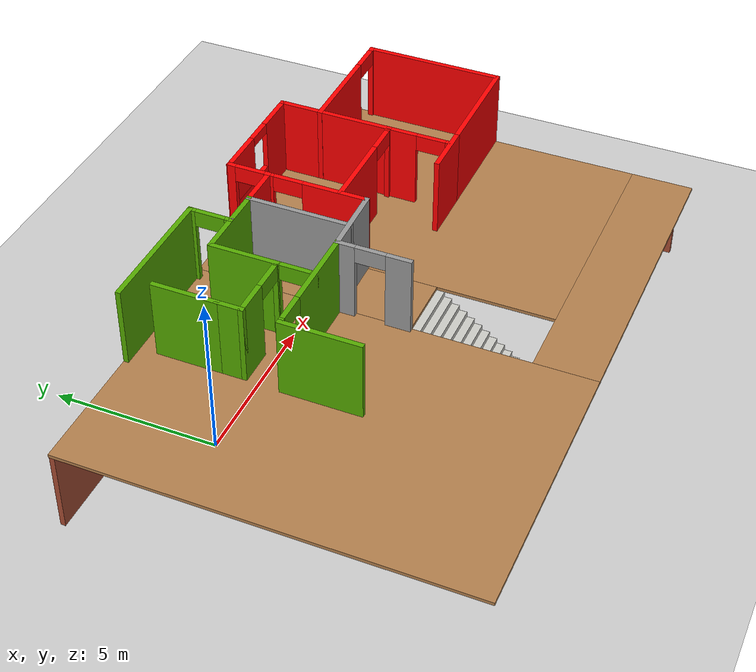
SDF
<sdf version="1.6">
 <world name="default">
  <model name="ground_plane">
   <static>1</static>
   <link name="link">
    <collision name="collision">
     <geometry><plane><normal>0 0 1</normal><size>100 100</size></plane></geometry>
     <surface><friction><ode><mu>100</mu><mu2>50</mu2></ode></friction></surface>
    </collision>
    <visual name="visual">
     <cast_shadows>0</cast_shadows>
     <geometry><plane><normal>0 0 1</normal><size>100 100</size></plane></geometry>
     <material>
      <script><uri>file://media/materials/scripts/gazebo.material</uri><name>Gazebo/Grey</name></script>
     </material>
    </visual>
   </link>
  </model>
  <model name="2floorHouse">
   <pose>4.58828 -3.57771 0 0 -0 0</pose>
   <link name="Floor_7">
    <pose>-0.064 0 2.5 0 -0 0</pose>
    <visual name="Floor_7_Visual_0">
     <pose>-4.67984 0 0.05 0 -0 0</pose>
     <geometry><box><size>8.04273 11.89 0.1</size></box></geometry>
     <material>
      <script><uri>file://media/materials/scripts/gazebo.material</uri><name>Gazebo/Wood</name></script>
      <ambient>0 0 1 1</ambient>
     </material>
    </visual>
    <collision name="Floor_7_Collision_0">
     <geometry><box><size>8.04273 11.89 0.1</size></box></geometry>
     <pose>-4.67984 0 0.05 0 -0 0</pose>
    </collision>
    <visual name="Floor_7_Visual_1">
     <pose>4.02136 -5.01144 0.05 0 -0 0</pose>
     <geometry><box><size>9.35968 1.86713 0.1</size></box></geometry>
     <material>
      <script><uri>file://media/materials/scripts/gazebo.material</uri><name>Gazebo/Wood</name></script>
      <ambient>0 0 1 1</ambient>
     </material>
    </visual>
    <collision name="Floor_7_Collision_1">
     <geometry><box><size>9.35968 1.86713 0.1</size></box></geometry>
     <pose>4.02136 -5.01144 0.05 0 -0 0</pose>
    </collision>
    <visual name="Floor_7_Visual_2">
     <pose>4.98424 0.933567 0.05 0 -0 0</pose>
     <geometry><box><size>7.43393 10.0229 0.1</size></box></geometry>
     <material>
      <script><uri>file://media/materials/scripts/gazebo.material</uri><name>Gazebo/Wood</name></script>
      <ambient>0 0 1 1</ambient>
     </material>
    </visual>
    <collision name="Floor_7_Collision_2">
     <geometry><box><size>7.43393 10.0229 0.1</size></box></geometry>
     <pose>4.98424 0.933567 0.05 0 -0 0</pose>
    </collision>
    <visual name="Floor_7_Visual_3">
     <pose>0.304399 2.68357 0.05 0 -0 0</pose>
     <geometry><box><size>1.92575 6.52287 0.1</size></box></geometry>
     <material>
      <script><uri>file://media/materials/scripts/gazebo.material</uri><name>Gazebo/Wood</name></script>
      <ambient>0 0 1 1</ambient>
     </material>
    </visual>
    <collision name="Floor_7_Collision_3">
     <geometry><box><size>1.92575 6.52287 0.1</size></box></geometry>
     <pose>0.304399 2.68357 0.05 0 -0 0</pose>
    </collision>
   </link>
   <link name="Stairs_0">
    <visual name="Stairs_0_Visual_0">
     <pose>0.240398 -3.9612 0.083333 0 -0 -3.14159</pose>
     <geometry><box><size>1.92575 0.233333 0.166667</size></box></geometry>
     <material>
      <script><uri>file://media/materials/scripts/gazebo.material</uri><name>Gazebo/CeilingTiled</name></script>
      <ambient>0 0 0 1</ambient>
     </material>
    </visual>
    <collision name="Stairs_0_Collision_0">
     <geometry><box><size>1.92575 0.233333 0.166667</size></box></geometry>
     <pose>0.240398 -3.9612 0.083333 0 -0 -3.14159</pose>
    </collision>
    <visual name="Stairs_0_Visual_1">
     <pose>0.240398 -3.72787 0.25 0 -0 -3.14159</pose>
     <geometry><box><size>1.92575 0.233333 0.166667</size></box></geometry>
     <material>
      <script><uri>file://media/materials/scripts/gazebo.material</uri><name>Gazebo/CeilingTiled</name></script>
      <ambient>0 0 0 1</ambient>
     </material>
    </visual>
    <collision name="Stairs_0_Collision_1">
     <geometry><box><size>1.92575 0.233333 0.166667</size></box></geometry>
     <pose>0.240398 -3.72787 0.25 0 -0 -3.14159</pose>
    </collision>
    <visual name="Stairs_0_Visual_2">
     <pose>0.240398 -3.49454 0.416667 0 -0 -3.14159</pose>
     <geometry><box><size>1.92575 0.233333 0.166667</size></box></geometry>
     <material>
      <script><uri>file://media/materials/scripts/gazebo.material</uri><name>Gazebo/CeilingTiled</name></script>
      <ambient>0 0 0 1</ambient>
     </material>
    </visual>
    <collision name="Stairs_0_Collision_2">
     <geometry><box><size>1.92575 0.233333 0.166667</size></box></geometry>
     <pose>0.240398 -3.49454 0.416667 0 -0 -3.14159</pose>
    </collision>
    <visual name="Stairs_0_Visual_3">
     <pose>0.240398 -3.2612 0.583333 0 -0 -3.14159</pose>
     <geometry><box><size>1.92575 0.233333 0.166667</size></box></geometry>
     <material>
      <script><uri>file://media/materials/scripts/gazebo.material</uri><name>Gazebo/CeilingTiled</name></script>
      <ambient>0 0 0 1</ambient>
     </material>
    </visual>
    <collision name="Stairs_0_Collision_3">
     <geometry><box><size>1.92575 0.233333 0.166667</size></box></geometry>
     <pose>0.240398 -3.2612 0.583333 0 -0 -3.14159</pose>
    </collision>
    <visual name="Stairs_0_Visual_4">
     <pose>0.240398 -3.02787 0.75 0 -0 -3.14159</pose>
     <geometry><box><size>1.92575 0.233333 0.166667</size></box></geometry>
     <material>
      <script><uri>file://media/materials/scripts/gazebo.material</uri><name>Gazebo/CeilingTiled</name></script>
      <ambient>0 0 0 1</ambient>
     </material>
    </visual>
    <collision name="Stairs_0_Collision_4">
     <geometry><box><size>1.92575 0.233333 0.166667</size></box></geometry>
     <pose>0.240398 -3.02787 0.75 0 -0 -3.14159</pose>
    </collision>
    <visual name="Stairs_0_Visual_5">
     <pose>0.240398 -2.79454 0.916667 0 -0 -3.14159</pose>
     <geometry><box><size>1.92575 0.233333 0.166667</size></box></geometry>
     <material>
      <script><uri>file://media/materials/scripts/gazebo.material</uri><name>Gazebo/CeilingTiled</name></script>
      <ambient>0 0 0 1</ambient>
     </material>
    </visual>
    <collision name="Stairs_0_Collision_5">
     <geometry><box><size>1.92575 0.233333 0.166667</size></box></geometry>
     <pose>0.240398 -2.79454 0.916667 0 -0 -3.14159</pose>
    </collision>
    <visual name="Stairs_0_Visual_6">
     <pose>0.240398 -2.5612 1.08333 0 -0 -3.14159</pose>
     <geometry><box><size>1.92575 0.233333 0.166667</size></box></geometry>
     <material>
      <script><uri>file://media/materials/scripts/gazebo.material</uri><name>Gazebo/CeilingTiled</name></script>
      <ambient>0 0 0 1</ambient>
     </material>
    </visual>
    <collision name="Stairs_0_Collision_6">
     <geometry><box><size>1.92575 0.233333 0.166667</size></box></geometry>
     <pose>0.240398 -2.5612 1.08333 0 -0 -3.14159</pose>
    </collision>
    <visual name="Stairs_0_Visual_7">
     <pose>0.240398 -2.32787 1.25 0 -0 -3.14159</pose>
     <geometry><box><size>1.92575 0.233333 0.166667</size></box></geometry>
     <material>
      <script><uri>file://media/materials/scripts/gazebo.material</uri><name>Gazebo/CeilingTiled</name></script>
      <ambient>0 0 0 1</ambient>
     </material>
    </visual>
    <collision name="Stairs_0_Collision_7">
     <geometry><box><size>1.92575 0.233333 0.166667</size></box></geometry>
     <pose>0.240398 -2.32787 1.25 0 -0 -3.14159</pose>
    </collision>
    <visual name="Stairs_0_Visual_8">
     <pose>0.240398 -2.09454 1.41667 0 -0 -3.14159</pose>
     <geometry><box><size>1.92575 0.233333 0.166667</size></box></geometry>
     <material>
      <script><uri>file://media/materials/scripts/gazebo.material</uri><name>Gazebo/CeilingTiled</name></script>
      <ambient>0 0 0 1</ambient>
     </material>
    </visual>
    <collision name="Stairs_0_Collision_8">
     <geometry><box><size>1.92575 0.233333 0.166667</size></box></geometry>
     <pose>0.240398 -2.09454 1.41667 0 -0 -3.14159</pose>
    </collision>
    <visual name="Stairs_0_Visual_9">
     <pose>0.240398 -1.8612 1.58333 0 -0 -3.14159</pose>
     <geometry><box><size>1.92575 0.233333 0.166667</size></box></geometry>
     <material>
      <script><uri>file://media/materials/scripts/gazebo.material</uri><name>Gazebo/CeilingTiled</name></script>
      <ambient>0 0 0 1</ambient>
     </material>
    </visual>
    <collision name="Stairs_0_Collision_9">
     <geometry><box><size>1.92575 0.233333 0.166667</size></box></geometry>
     <pose>0.240398 -1.8612 1.58333 0 -0 -3.14159</pose>
    </collision>
    <visual name="Stairs_0_Visual_10">
     <pose>0.240398 -1.62787 1.75 0 -0 -3.14159</pose>
     <geometry><box><size>1.92575 0.233333 0.166667</size></box></geometry>
     <material>
      <script><uri>file://media/materials/scripts/gazebo.material</uri><name>Gazebo/CeilingTiled</name></script>
      <ambient>0 0 0 1</ambient>
     </material>
    </visual>
    <collision name="Stairs_0_Collision_10">
     <geometry><box><size>1.92575 0.233333 0.166667</size></box></geometry>
     <pose>0.240398 -1.62787 1.75 0 -0 -3.14159</pose>
    </collision>
    <visual name="Stairs_0_Visual_11">
     <pose>0.240398 -1.39454 1.91667 0 -0 -3.14159</pose>
     <geometry><box><size>1.92575 0.233333 0.166667</size></box></geometry>
     <material>
      <script><uri>file://media/materials/scripts/gazebo.material</uri><name>Gazebo/CeilingTiled</name></script>
      <ambient>0 0 0 1</ambient>
     </material>
    </visual>
    <collision name="Stairs_0_Collision_11">
     <geometry><box><size>1.92575 0.233333 0.166667</size></box></geometry>
     <pose>0.240398 -1.39454 1.91667 0 -0 -3.14159</pose>
    </collision>
    <visual name="Stairs_0_Visual_12">
     <pose>0.240398 -1.1612 2.08333 0 -0 -3.14159</pose>
     <geometry><box><size>1.92575 0.233333 0.166667</size></box></geometry>
     <material>
      <script><uri>file://media/materials/scripts/gazebo.material</uri><name>Gazebo/CeilingTiled</name></script>
      <ambient>0 0 0 1</ambient>
     </material>
    </visual>
    <collision name="Stairs_0_Collision_12">
     <geometry><box><size>1.92575 0.233333 0.166667</size></box></geometry>
     <pose>0.240398 -1.1612 2.08333 0 -0 -3.14159</pose>
    </collision>
    <visual name="Stairs_0_Visual_13">
     <pose>0.240398 -0.92787 2.25 0 -0 -3.14159</pose>
     <geometry><box><size>1.92575 0.233333 0.166667</size></box></geometry>
     <material>
      <script><uri>file://media/materials/scripts/gazebo.material</uri><name>Gazebo/CeilingTiled</name></script>
      <ambient>0 0 0 1</ambient>
     </material>
    </visual>
    <collision name="Stairs_0_Collision_13">
     <geometry><box><size>1.92575 0.233333 0.166667</size></box></geometry>
     <pose>0.240398 -0.92787 2.25 0 -0 -3.14159</pose>
    </collision>
    <visual name="Stairs_0_Visual_14">
     <pose>0.240398 -0.694536 2.41667 0 -0 -3.14159</pose>
     <geometry><box><size>1.92575 0.233333 0.166667</size></box></geometry>
     <material>
      <script><uri>file://media/materials/scripts/gazebo.material</uri><name>Gazebo/CeilingTiled</name></script>
      <ambient>0 0 0 1</ambient>
     </material>
    </visual>
    <collision name="Stairs_0_Collision_14">
     <geometry><box><size>1.92575 0.233333 0.166667</size></box></geometry>
     <pose>0.240398 -0.694536 2.41667 0 -0 -3.14159</pose>
    </collision>
   </link>
   <link name="Wall_100">
    <collision name="Wall_100_Collision">
     <geometry><box><size>1.38678 0.15 2.5</size></box></geometry>
     <pose>0 0 1.25 0 -0 0</pose>
    </collision>
    <visual name="Wall_100_Visual">
     <pose>0 0 1.25 0 -0 0</pose>
     <geometry><box><size>1.38678 0.15 2.5</size></box></geometry>
     <material>
      <script><uri>file://media/materials/scripts/gazebo.material</uri><name>Gazebo/Grey</name></script>
      <ambient>1 1 1 1</ambient>
     </material>
    </visual>
    <pose>0.641704 4.61 0 0 -0 3.14159</pose>
   </link>
   <link name="Wall_106">
    <collision name="Wall_106_Collision">
     <geometry><box><size>2.4 0.15 2.5</size></box></geometry>
     <pose>0 0 1.25 0 -0 0</pose>
    </collision>
    <visual name="Wall_106_Visual">
     <pose>0 0 1.25 0 -0 0</pose>
     <geometry><box><size>2.4 0.15 2.5</size></box></geometry>
     <material>
      <script><uri>file://media/materials/scripts/gazebo.material</uri><name>Gazebo/Grey</name></script>
      <ambient>1 1 1 1</ambient>
     </material>
    </visual>
    <pose>-1.1018 4.61 0 0 -0 3.14159</pose>
   </link>
   <link name="Wall_108">
    <collision name="Wall_108_Collision">
     <geometry><box><size>2.1 0.15 2.5</size></box></geometry>
     <pose>0 0 1.25 0 -0 0</pose>
    </collision>
    <visual name="Wall_108_Visual">
     <pose>0 0 1.25 0 -0 0</pose>
     <geometry><box><size>2.1 0.15 2.5</size></box></geometry>
     <material>
      <script><uri>file://media/materials/scripts/gazebo.material</uri><name>Gazebo/Grey</name></script>
      <ambient>1 1 1 1</ambient>
     </material>
    </visual>
    <pose>-2.23979 3.635 0 0 -0 1.5708</pose>
   </link>
   <link name="Wall_112">
    <collision name="Wall_112_Collision">
     <geometry><box><size>4 0.15 2.5</size></box></geometry>
     <pose>0 0 1.25 0 -0 0</pose>
    </collision>
    <visual name="Wall_112_Visual">
     <pose>0 0 1.25 0 -0 0</pose>
     <geometry><box><size>4 0.15 2.5</size></box></geometry>
     <material>
      <script><uri>file://media/materials/scripts/gazebo.material</uri><name>Gazebo/Grey</name></script>
      <ambient>1 1 1 1</ambient>
     </material>
    </visual>
    <pose>-2.98475 5.8698 0 0 0 -3.14149</pose>
   </link>
   <link name="Wall_115">
    <collision name="Wall_115_Collision">
     <geometry><box><size>1.4 0.15 2.5</size></box></geometry>
     <pose>0 0 1.25 0 -0 0</pose>
    </collision>
    <visual name="Wall_115_Visual">
     <pose>0 0 1.25 0 -0 0</pose>
     <geometry><box><size>1.4 0.15 2.5</size></box></geometry>
     <material>
      <script><uri>file://media/materials/scripts/gazebo.material</uri><name>Gazebo/Grey</name></script>
      <ambient>1 1 1 1</ambient>
     </material>
    </visual>
    <pose>-1.0598 5.245 0 0 0 -1.5708</pose>
   </link>
   <link name="Wall_116">
    <collision name="Wall_116_Collision">
     <geometry><box><size>0.15 0.15 2.5</size></box></geometry>
     <pose>0 0 1.25 0 -0 0</pose>
    </collision>
    <visual name="Wall_116_Visual">
     <pose>0 0 1.25 0 -0 0</pose>
     <geometry><box><size>0.15 0.15 2.5</size></box></geometry>
     <material>
      <script><uri>file://media/materials/scripts/gazebo.material</uri><name>Gazebo/Grey</name></script>
      <ambient>1 1 1 1</ambient>
     </material>
    </visual>
    <pose>-1.0598 4.62 0 0 -0 0</pose>
   </link>
   <link name="Wall_130">
    <collision name="Wall_130_Collision">
     <geometry><box><size>3.6 0.15 2.5</size></box></geometry>
     <pose>0 0 1.25 0 -0 0</pose>
    </collision>
    <visual name="Wall_130_Visual">
     <pose>0 0 1.25 0 -0 0</pose>
     <geometry><box><size>3.6 0.15 2.5</size></box></geometry>
     <material>
      <script><uri>file://media/materials/scripts/gazebo.material</uri><name>Gazebo/Grey</name></script>
      <ambient>1 1 1 1</ambient>
     </material>
    </visual>
    <pose>2.9912 5.838 0 0 -0 3.14159</pose>
   </link>
   <link name="Wall_133">
    <collision name="Wall_133_Collision">
     <geometry><box><size>1.35 0.15 2.5</size></box></geometry>
     <pose>0 0 1.25 0 -0 0</pose>
    </collision>
    <visual name="Wall_133_Visual">
     <pose>0 0 1.25 0 -0 0</pose>
     <geometry><box><size>1.35 0.15 2.5</size></box></geometry>
     <material>
      <script><uri>file://media/materials/scripts/gazebo.material</uri><name>Gazebo/Grey</name></script>
      <ambient>1 1 1 1</ambient>
     </material>
    </visual>
    <pose>1.26021 5.21 0 0 -0 1.5708</pose>
   </link>
   <link name="Wall_297">
    <collision name="Wall_297_Collision">
     <geometry><box><size>2.4 0.15 2.5</size></box></geometry>
     <pose>0 0 1.25 0 -0 0</pose>
    </collision>
    <visual name="Wall_297_Visual">
     <pose>0 0 1.25 0 -0 0</pose>
     <geometry><box><size>2.4 0.15 2.5</size></box></geometry>
     <material>
      <script><uri>file://media/materials/scripts/gazebo.material</uri><name>Gazebo/Grey</name></script>
      <ambient>0.333333 0.666667 0 1</ambient>
     </material>
    </visual>
    <pose>-4.34021 0.434996 2.5 0 0 -1.5708</pose>
   </link>
   <link name="Wall_299">
    <pose>-2.565 1.56 2.5 0 -0 0</pose>
    <visual name="Wall_299_Visual_0">
     <pose>-1.73627 0 1.25 0 -0 0</pose>
     <geometry><box><size>0.227865 0.15 2.5</size></box></geometry>
     <material>
      <script><uri>file://media/materials/scripts/gazebo.material</uri><name>Gazebo/Grey</name></script>
      <ambient>0.333333 0.666667 0 1</ambient>
     </material>
    </visual>
    <collision name="Wall_299_Collision_0">
     <geometry><box><size>0.227865 0.15 2.5</size></box></geometry>
     <pose>-1.73627 0 1.25 0 -0 0</pose>
    </collision>
    <visual name="Wall_299_Visual_1">
     <pose>0.563933 0 1.25 0 -0 0</pose>
     <geometry><box><size>2.57254 0.15 2.5</size></box></geometry>
     <material>
      <script><uri>file://media/materials/scripts/gazebo.material</uri><name>Gazebo/Grey</name></script>
      <ambient>0.333333 0.666667 0 1</ambient>
     </material>
    </visual>
    <collision name="Wall_299_Collision_1">
     <geometry><box><size>2.57254 0.15 2.5</size></box></geometry>
     <pose>0.563933 0 1.25 0 -0 0</pose>
    </collision>
    <visual name="Wall_299_Visual_2">
     <pose>-1.17234 0 2.25 0 -0 0</pose>
     <geometry><box><size>0.9 0.15 0.5</size></box></geometry>
     <material>
      <script><uri>file://media/materials/scripts/gazebo.material</uri><name>Gazebo/Grey</name></script>
      <ambient>0.333333 0.666667 0 1</ambient>
     </material>
    </visual>
    <collision name="Wall_299_Collision_2">
     <geometry><box><size>0.9 0.15 0.5</size></box></geometry>
     <pose>-1.17234 0 2.25 0 -0 0</pose>
    </collision>
   </link>
   <link name="Wall_300">
    <pose>-0.789795 0.509996 2.5 0 0 -1.5708</pose>
    <visual name="Wall_300_Visual_0">
     <pose>-0.8265 0 1.25 0 -0 0</pose>
     <geometry><box><size>0.597 0.15 2.5</size></box></geometry>
     <material>
      <script><uri>file://media/materials/scripts/gazebo.material</uri><name>Gazebo/Grey</name></script>
      <ambient>1 1 1 1</ambient>
     </material>
    </visual>
    <collision name="Wall_300_Collision_0">
     <geometry><box><size>0.597 0.15 2.5</size></box></geometry>
     <pose>-0.8265 0 1.25 0 -0 0</pose>
    </collision>
    <visual name="Wall_300_Visual_1">
     <pose>0.7485 0 1.25 0 -0 0</pose>
     <geometry><box><size>0.753 0.15 2.5</size></box></geometry>
     <material>
      <script><uri>file://media/materials/scripts/gazebo.material</uri><name>Gazebo/Grey</name></script>
      <ambient>1 1 1 1</ambient>
     </material>
    </visual>
    <collision name="Wall_300_Collision_1">
     <geometry><box><size>0.753 0.15 2.5</size></box></geometry>
     <pose>0.7485 0 1.25 0 -0 0</pose>
    </collision>
    <visual name="Wall_300_Visual_2">
     <pose>-0.078 0 2.25 0 -0 0</pose>
     <geometry><box><size>0.9 0.15 0.5</size></box></geometry>
     <material>
      <script><uri>file://media/materials/scripts/gazebo.material</uri><name>Gazebo/Grey</name></script>
      <ambient>1 1 1 1</ambient>
     </material>
    </visual>
    <collision name="Wall_300_Collision_2">
     <geometry><box><size>0.9 0.15 0.5</size></box></geometry>
     <pose>-0.078 0 2.25 0 -0 0</pose>
    </collision>
   </link>
   <link name="Wall_307">
    <collision name="Wall_307_Collision">
     <geometry><box><size>2 0.15 2.5</size></box></geometry>
     <pose>0 0 1.25 0 -0 0</pose>
    </collision>
    <visual name="Wall_307_Visual">
     <pose>0 0 1.25 0 -0 0</pose>
     <geometry><box><size>2 0.15 2.5</size></box></geometry>
     <material>
      <script><uri>file://media/materials/scripts/gazebo.material</uri><name>Gazebo/Grey</name></script>
      <ambient>0.333333 0.666667 0 1</ambient>
     </material>
    </visual>
    <pose>-4.29 4.285 2.5 0 0 -1.57058</pose>
   </link>
   <link name="Wall_309">
    <collision name="Wall_309_Collision">
     <geometry><box><size>0.85 0.15 2.5</size></box></geometry>
     <pose>0 0 1.25 0 -0 0</pose>
    </collision>
    <visual name="Wall_309_Visual">
     <pose>0 0 1.25 0 -0 0</pose>
     <geometry><box><size>0.85 0.15 2.5</size></box></geometry>
     <material>
      <script><uri>file://media/materials/scripts/gazebo.material</uri><name>Gazebo/Grey</name></script>
      <ambient>0.333333 0.666667 0 1</ambient>
     </material>
    </visual>
    <pose>-4.28979 3.01 2.5 0 0 -1.5708</pose>
   </link>
   <link name="Wall_310">
    <pose>-3.2648 2.66 2.5 0 -0 0</pose>
    <visual name="Wall_310_Visual_0">
     <pose>-0.547035 0 1.25 0 -0 0</pose>
     <geometry><box><size>1.10593 0.15 2.5</size></box></geometry>
     <material>
      <script><uri>file://media/materials/scripts/gazebo.material</uri><name>Gazebo/Grey</name></script>
      <ambient>0.333333 0.666667 0 1</ambient>
     </material>
    </visual>
    <collision name="Wall_310_Collision_0">
     <geometry><box><size>1.10593 0.15 2.5</size></box></geometry>
     <pose>-0.547035 0 1.25 0 -0 0</pose>
    </collision>
    <visual name="Wall_310_Visual_1">
     <pose>1.00297 0 1.25 0 -0 0</pose>
     <geometry><box><size>0.194069 0.15 2.5</size></box></geometry>
     <material>
      <script><uri>file://media/materials/scripts/gazebo.material</uri><name>Gazebo/Grey</name></script>
      <ambient>0.333333 0.666667 0 1</ambient>
     </material>
    </visual>
    <collision name="Wall_310_Collision_1">
     <geometry><box><size>0.194069 0.15 2.5</size></box></geometry>
     <pose>1.00297 0 1.25 0 -0 0</pose>
    </collision>
    <visual name="Wall_310_Visual_2">
     <pose>0.455931 0 2.25 0 -0 0</pose>
     <geometry><box><size>0.9 0.15 0.5</size></box></geometry>
     <material>
      <script><uri>file://media/materials/scripts/gazebo.material</uri><name>Gazebo/Grey</name></script>
      <ambient>0.333333 0.666667 0 1</ambient>
     </material>
    </visual>
    <collision name="Wall_310_Collision_2">
     <geometry><box><size>0.9 0.15 0.5</size></box></geometry>
     <pose>0.455931 0 2.25 0 -0 0</pose>
    </collision>
   </link>
   <link name="Wall_311">
    <pose>-2.23979 2.11 2.5 0 0 -1.5708</pose>
    <visual name="Wall_311_Visual_0">
     <pose>-0.539157 0 1.25 0 -0 0</pose>
     <geometry><box><size>0.171686 0.15 2.5</size></box></geometry>
     <material>
      <script><uri>file://media/materials/scripts/gazebo.material</uri><name>Gazebo/Grey</name></script>
      <ambient>0.333333 0.666667 0 1</ambient>
     </material>
    </visual>
    <collision name="Wall_311_Collision_0">
     <geometry><box><size>0.171686 0.15 2.5</size></box></geometry>
     <pose>-0.539157 0 1.25 0 -0 0</pose>
    </collision>
    <visual name="Wall_311_Visual_1">
     <pose>0.535843 0 1.25 0 -0 0</pose>
     <geometry><box><size>0.178314 0.15 2.5</size></box></geometry>
     <material>
      <script><uri>file://media/materials/scripts/gazebo.material</uri><name>Gazebo/Grey</name></script>
      <ambient>0.333333 0.666667 0 1</ambient>
     </material>
    </visual>
    <collision name="Wall_311_Collision_1">
     <geometry><box><size>0.178314 0.15 2.5</size></box></geometry>
     <pose>0.535843 0 1.25 0 -0 0</pose>
    </collision>
    <visual name="Wall_311_Visual_2">
     <pose>-0.003314 0 2.25 0 -0 0</pose>
     <geometry><box><size>0.9 0.15 0.5</size></box></geometry>
     <material>
      <script><uri>file://media/materials/scripts/gazebo.material</uri><name>Gazebo/Grey</name></script>
      <ambient>0.333333 0.666667 0 1</ambient>
     </material>
    </visual>
    <collision name="Wall_311_Collision_2">
     <geometry><box><size>0.9 0.15 0.5</size></box></geometry>
     <pose>-0.003314 0 2.25 0 -0 0</pose>
    </collision>
   </link>
   <link name="Wall_312">
    <collision name="Wall_312_Collision">
     <geometry><box><size>2.20039 0.15 2.5</size></box></geometry>
     <pose>0 0 1.25 0 -0 0</pose>
    </collision>
    <visual name="Wall_312_Visual">
     <pose>0 0 1.25 0 -0 0</pose>
     <geometry><box><size>2.20039 0.15 2.5</size></box></geometry>
     <material>
      <script><uri>file://media/materials/scripts/gazebo.material</uri><name>Gazebo/Grey</name></script>
      <ambient>1 1 1 1</ambient>
     </material>
    </visual>
    <pose>0.235204 1.58011 2.5 0 -0 0.01962</pose>
   </link>
   <link name="Wall_313">
    <pose>1.26021 3.10511 2.5 0 -0 1.5708</pose>
    <visual name="Wall_313_Visual_0">
     <pose>-0.572109 0 1.25 0 -0 0</pose>
     <geometry><box><size>2.01555 0.15 2.5</size></box></geometry>
     <material>
      <script><uri>file://media/materials/scripts/gazebo.material</uri><name>Gazebo/Grey</name></script>
      <ambient>1 0 0 1</ambient>
     </material>
    </visual>
    <collision name="Wall_313_Collision_0">
     <geometry><box><size>2.01555 0.15 2.5</size></box></geometry>
     <pose>-0.572109 0 1.25 0 -0 0</pose>
    </collision>
    <visual name="Wall_313_Visual_1">
     <pose>1.45778 0 1.25 0 -0 0</pose>
     <geometry><box><size>0.244218 0.15 2.5</size></box></geometry>
     <material>
      <script><uri>file://media/materials/scripts/gazebo.material</uri><name>Gazebo/Grey</name></script>
      <ambient>1 0 0 1</ambient>
     </material>
    </visual>
    <collision name="Wall_313_Collision_1">
     <geometry><box><size>0.244218 0.15 2.5</size></box></geometry>
     <pose>1.45778 0 1.25 0 -0 0</pose>
    </collision>
    <visual name="Wall_313_Visual_2">
     <pose>0.885669 0 2.25 0 -0 0</pose>
     <geometry><box><size>0.9 0.15 0.5</size></box></geometry>
     <material>
      <script><uri>file://media/materials/scripts/gazebo.material</uri><name>Gazebo/Grey</name></script>
      <ambient>1 0 0 1</ambient>
     </material>
    </visual>
    <collision name="Wall_313_Collision_2">
     <geometry><box><size>0.9 0.15 0.5</size></box></geometry>
     <pose>0.885669 0 2.25 0 -0 0</pose>
    </collision>
   </link>
   <link name="Wall_314">
    <collision name="Wall_314_Collision">
     <geometry><box><size>1.387 0.15 2.5</size></box></geometry>
     <pose>0 0 1.25 0 -0 0</pose>
    </collision>
    <visual name="Wall_314_Visual">
     <pose>0 0 1.25 0 -0 0</pose>
     <geometry><box><size>1.387 0.15 2.5</size></box></geometry>
     <material>
      <script><uri>file://media/materials/scripts/gazebo.material</uri><name>Gazebo/Grey</name></script>
      <ambient>1 0 0 1</ambient>
     </material>
    </visual>
    <pose>0.641704 4.61 2.5 0 -0 3.14159</pose>
   </link>
   <link name="Wall_315">
    <collision name="Wall_315_Collision">
     <geometry><box><size>3.2 0.15 2.5</size></box></geometry>
     <pose>0 0 1.25 0 -0 0</pose>
    </collision>
    <visual name="Wall_315_Visual">
     <pose>0 0 1.25 0 -0 0</pose>
     <geometry><box><size>3.2 0.15 2.5</size></box></geometry>
     <material>
      <script><uri>file://media/materials/scripts/gazebo.material</uri><name>Gazebo/Grey</name></script>
      <ambient>1 1 1 1</ambient>
     </material>
    </visual>
    <pose>0.023205 3.085 2.5 0 0 -1.5708</pose>
   </link>
   <link name="Wall_316">
    <collision name="Wall_316_Collision">
     <geometry><box><size>2.4 0.15 2.5</size></box></geometry>
     <pose>0 0 1.25 0 -0 0</pose>
    </collision>
    <visual name="Wall_316_Visual">
     <pose>0 0 1.25 0 -0 0</pose>
     <geometry><box><size>2.4 0.15 2.5</size></box></geometry>
     <material>
      <script><uri>file://media/materials/scripts/gazebo.material</uri><name>Gazebo/Grey</name></script>
      <ambient>0.333333 0.666667 0 1</ambient>
     </material>
    </visual>
    <pose>-1.1018 4.61 2.5 0 -0 3.14159</pose>
   </link>
   <link name="Wall_317">
    <collision name="Wall_317_Collision">
     <geometry><box><size>2.1 0.15 2.5</size></box></geometry>
     <pose>0 0 1.25 0 -0 0</pose>
    </collision>
    <visual name="Wall_317_Visual">
     <pose>0 0 1.25 0 -0 0</pose>
     <geometry><box><size>2.1 0.15 2.5</size></box></geometry>
     <material>
      <script><uri>file://media/materials/scripts/gazebo.material</uri><name>Gazebo/Grey</name></script>
      <ambient>0.333333 0.666667 0 1</ambient>
     </material>
    </visual>
    <pose>-2.23979 3.635 2.5 0 -0 1.5708</pose>
   </link>
   <link name="Wall_318">
    <collision name="Wall_318_Collision">
     <geometry><box><size>3.99991 0.15 2.5</size></box></geometry>
     <pose>0 0 1.25 0 -0 0</pose>
    </collision>
    <visual name="Wall_318_Visual">
     <pose>0 0 1.25 0 -0 0</pose>
     <geometry><box><size>3.99991 0.15 2.5</size></box></geometry>
     <material>
      <script><uri>file://media/materials/scripts/gazebo.material</uri><name>Gazebo/Grey</name></script>
      <ambient>0.333333 0.666667 0 1</ambient>
     </material>
    </visual>
    <pose>-2.98475 5.8698 2.5 0 0 -3.14149</pose>
   </link>
   <link name="Wall_320">
    <pose>-1.0598 5.245 2.5 0 0 -1.5708</pose>
    <visual name="Wall_320_Visual_0">
     <pose>-0.572184 0 1.25 0 -0 0</pose>
     <geometry><box><size>0.255633 0.15 2.5</size></box></geometry>
     <material>
      <script><uri>file://media/materials/scripts/gazebo.material</uri><name>Gazebo/Grey</name></script>
      <ambient>0.333333 0.666667 0 1</ambient>
     </material>
    </visual>
    <collision name="Wall_320_Collision_0">
     <geometry><box><size>0.255633 0.15 2.5</size></box></geometry>
     <pose>-0.572184 0 1.25 0 -0 0</pose>
    </collision>
    <visual name="Wall_320_Visual_1">
     <pose>0.577816 0 1.25 0 -0 0</pose>
     <geometry><box><size>0.244367 0.15 2.5</size></box></geometry>
     <material>
      <script><uri>file://media/materials/scripts/gazebo.material</uri><name>Gazebo/Grey</name></script>
      <ambient>0.333333 0.666667 0 1</ambient>
     </material>
    </visual>
    <collision name="Wall_320_Collision_1">
     <geometry><box><size>0.244367 0.15 2.5</size></box></geometry>
     <pose>0.577816 0 1.25 0 -0 0</pose>
    </collision>
    <visual name="Wall_320_Visual_2">
     <pose>0.005633 0 2.25 0 -0 0</pose>
     <geometry><box><size>0.9 0.15 0.5</size></box></geometry>
     <material>
      <script><uri>file://media/materials/scripts/gazebo.material</uri><name>Gazebo/Grey</name></script>
      <ambient>0.333333 0.666667 0 1</ambient>
     </material>
    </visual>
    <collision name="Wall_320_Collision_2">
     <geometry><box><size>0.9 0.15 0.5</size></box></geometry>
     <pose>0.005633 0 2.25 0 -0 0</pose>
    </collision>
   </link>
   <link name="Wall_321">
    <collision name="Wall_321_Collision">
     <geometry><box><size>0.15 0.15 2.5</size></box></geometry>
     <pose>0 0 1.25 0 -0 0</pose>
    </collision>
    <visual name="Wall_321_Visual">
     <pose>0 0 1.25 0 -0 0</pose>
     <geometry><box><size>0.15 0.15 2.5</size></box></geometry>
     <material>
      <script><uri>file://media/materials/scripts/gazebo.material</uri><name>Gazebo/Grey</name></script>
      <ambient>1 1 1 1</ambient>
     </material>
    </visual>
    <pose>-1.0598 4.62 2.5 0 -0 0</pose>
   </link>
   <link name="Wall_322">
    <pose>2.9912 2.388 2.5 0 -0 0</pose>
    <visual name="Wall_322_Visual_0">
     <pose>-0.562525 0 1.25 0 -0 0</pose>
     <geometry><box><size>2.47495 0.15 2.5</size></box></geometry>
     <material>
      <script><uri>file://media/materials/scripts/gazebo.material</uri><name>Gazebo/Grey</name></script>
      <ambient>1 0 0 1</ambient>
     </material>
    </visual>
    <collision name="Wall_322_Collision_0">
     <geometry><box><size>2.47495 0.15 2.5</size></box></geometry>
     <pose>-0.562525 0 1.25 0 -0 0</pose>
    </collision>
    <visual name="Wall_322_Visual_1">
     <pose>1.68748 0 1.25 0 -0 0</pose>
     <geometry><box><size>0.225051 0.15 2.5</size></box></geometry>
     <material>
      <script><uri>file://media/materials/scripts/gazebo.material</uri><name>Gazebo/Grey</name></script>
      <ambient>1 0 0 1</ambient>
     </material>
    </visual>
    <collision name="Wall_322_Collision_1">
     <geometry><box><size>0.225051 0.15 2.5</size></box></geometry>
     <pose>1.68748 0 1.25 0 -0 0</pose>
    </collision>
    <visual name="Wall_322_Visual_2">
     <pose>1.12495 0 2.25 0 -0 0</pose>
     <geometry><box><size>0.9 0.15 0.5</size></box></geometry>
     <material>
      <script><uri>file://media/materials/scripts/gazebo.material</uri><name>Gazebo/Grey</name></script>
      <ambient>1 0 0 1</ambient>
     </material>
    </visual>
    <collision name="Wall_322_Collision_2">
     <geometry><box><size>0.9 0.15 0.5</size></box></geometry>
     <pose>1.12495 0 2.25 0 -0 0</pose>
    </collision>
   </link>
   <link name="Wall_323">
    <collision name="Wall_323_Collision">
     <geometry><box><size>3.6 0.15 2.5</size></box></geometry>
     <pose>0 0 1.25 0 -0 0</pose>
    </collision>
    <visual name="Wall_323_Visual">
     <pose>0 0 1.25 0 -0 0</pose>
     <geometry><box><size>3.6 0.15 2.5</size></box></geometry>
     <material>
      <script><uri>file://media/materials/scripts/gazebo.material</uri><name>Gazebo/Grey</name></script>
      <ambient>1 0 0 1</ambient>
     </material>
    </visual>
    <pose>4.71621 4.113 2.5 0 -0 1.5708</pose>
   </link>
   <link name="Wall_324">
    <pose>2.9912 5.838 2.5 0 -0 3.14159</pose>
    <visual name="Wall_324_Visual_0">
     <pose>-1.13431 0 1.25 0 -0 0</pose>
     <geometry><box><size>1.33138 0.15 2.5</size></box></geometry>
     <material>
      <script><uri>file://media/materials/scripts/gazebo.material</uri><name>Gazebo/Grey</name></script>
      <ambient>1 0 0 1</ambient>
     </material>
    </visual>
    <collision name="Wall_324_Collision_0">
     <geometry><box><size>1.33138 0.15 2.5</size></box></geometry>
     <pose>-1.13431 0 1.25 0 -0 0</pose>
    </collision>
    <visual name="Wall_324_Visual_1">
     <pose>0.665691 0 0.5 0 -0 0</pose>
     <geometry><box><size>2.26862 0.15 1</size></box></geometry>
     <material>
      <script><uri>file://media/materials/scripts/gazebo.material</uri><name>Gazebo/Grey</name></script>
      <ambient>1 0 0 1</ambient>
     </material>
    </visual>
    <collision name="Wall_324_Collision_1">
     <geometry><box><size>2.26862 0.15 1</size></box></geometry>
     <pose>0.665691 0 0.5 0 -0 0</pose>
    </collision>
    <visual name="Wall_324_Visual_2">
     <pose>1.06569 0 1.75 0 -0 0</pose>
     <geometry><box><size>1.46862 0.15 1.5</size></box></geometry>
     <material>
      <script><uri>file://media/materials/scripts/gazebo.material</uri><name>Gazebo/Grey</name></script>
      <ambient>1 0 0 1</ambient>
     </material>
    </visual>
    <collision name="Wall_324_Collision_2">
     <geometry><box><size>1.46862 0.15 1.5</size></box></geometry>
     <pose>1.06569 0 1.75 0 -0 0</pose>
    </collision>
    <visual name="Wall_324_Visual_3">
     <pose>-0.068619 0 2.35 0 -0 0</pose>
     <geometry><box><size>0.8 0.15 0.3</size></box></geometry>
     <material>
      <script><uri>file://media/materials/scripts/gazebo.material</uri><name>Gazebo/Grey</name></script>
      <ambient>1 0 0 1</ambient>
     </material>
    </visual>
    <collision name="Wall_324_Collision_3">
     <geometry><box><size>0.8 0.15 0.3</size></box></geometry>
     <pose>-0.068619 0 2.35 0 -0 0</pose>
    </collision>
   </link>
   <link name="Wall_325">
    <pose>1.26021 5.21 2.5 0 -0 1.5708</pose>
    <visual name="Wall_325_Visual_0">
     <pose>-0.574505 0 1.25 0 -0 0</pose>
     <geometry><box><size>0.20099 0.15 2.5</size></box></geometry>
     <material>
      <script><uri>file://media/materials/scripts/gazebo.material</uri><name>Gazebo/Grey</name></script>
      <ambient>1 0 0 1</ambient>
     </material>
    </visual>
    <collision name="Wall_325_Collision_0">
     <geometry><box><size>0.20099 0.15 2.5</size></box></geometry>
     <pose>-0.574505 0 1.25 0 -0 0</pose>
    </collision>
    <visual name="Wall_325_Visual_1">
     <pose>0.550495 0 1.25 0 -0 0</pose>
     <geometry><box><size>0.24901 0.15 2.5</size></box></geometry>
     <material>
      <script><uri>file://media/materials/scripts/gazebo.material</uri><name>Gazebo/Grey</name></script>
      <ambient>1 0 0 1</ambient>
     </material>
    </visual>
    <collision name="Wall_325_Collision_1">
     <geometry><box><size>0.24901 0.15 2.5</size></box></geometry>
     <pose>0.550495 0 1.25 0 -0 0</pose>
    </collision>
    <visual name="Wall_325_Visual_2">
     <pose>-0.02401 0 2.25 0 -0 0</pose>
     <geometry><box><size>0.9 0.15 0.5</size></box></geometry>
     <material>
      <script><uri>file://media/materials/scripts/gazebo.material</uri><name>Gazebo/Grey</name></script>
      <ambient>1 0 0 1</ambient>
     </material>
    </visual>
    <collision name="Wall_325_Collision_2">
     <geometry><box><size>0.9 0.15 0.5</size></box></geometry>
     <pose>-0.02401 0 2.25 0 -0 0</pose>
    </collision>
   </link>
   <link name="Wall_326">
    <pose>6.6372 4.588 2.5 0 -0 0</pose>
    <visual name="Wall_326_Visual_0">
     <pose>-0.551177 0 1.25 0 -0 0</pose>
     <geometry><box><size>2.89765 0.15 2.5</size></box></geometry>
     <material>
      <script><uri>file://media/materials/scripts/gazebo.material</uri><name>Gazebo/Grey</name></script>
      <ambient>1 0 0 1</ambient>
     </material>
    </visual>
    <collision name="Wall_326_Collision_0">
     <geometry><box><size>2.89765 0.15 2.5</size></box></geometry>
     <pose>-0.551177 0 1.25 0 -0 0</pose>
    </collision>
    <visual name="Wall_326_Visual_1">
     <pose>1.89882 0 1.25 0 -0 0</pose>
     <geometry><box><size>0.202354 0.15 2.5</size></box></geometry>
     <material>
      <script><uri>file://media/materials/scripts/gazebo.material</uri><name>Gazebo/Grey</name></script>
      <ambient>1 0 0 1</ambient>
     </material>
    </visual>
    <collision name="Wall_326_Collision_1">
     <geometry><box><size>0.202354 0.15 2.5</size></box></geometry>
     <pose>1.89882 0 1.25 0 -0 0</pose>
    </collision>
    <visual name="Wall_326_Visual_2">
     <pose>1.34765 0 2.25 0 -0 0</pose>
     <geometry><box><size>0.9 0.15 0.5</size></box></geometry>
     <material>
      <script><uri>file://media/materials/scripts/gazebo.material</uri><name>Gazebo/Grey</name></script>
      <ambient>1 0 0 1</ambient>
     </material>
    </visual>
    <collision name="Wall_326_Collision_2">
     <geometry><box><size>0.9 0.15 0.5</size></box></geometry>
     <pose>1.34765 0 2.25 0 -0 0</pose>
    </collision>
   </link>
   <link name="Wall_327">
    <collision name="Wall_327_Collision">
     <geometry><box><size>4.3 0.15 2.5</size></box></geometry>
     <pose>0 0 1.25 0 -0 0</pose>
    </collision>
    <visual name="Wall_327_Visual">
     <pose>0 0 1.25 0 -0 0</pose>
     <geometry><box><size>4.3 0.15 2.5</size></box></geometry>
     <material>
      <script><uri>file://media/materials/scripts/gazebo.material</uri><name>Gazebo/Grey</name></script>
      <ambient>1 0 0 1</ambient>
     </material>
    </visual>
    <pose>8.56221 2.513 2.5 0 0 -1.5708</pose>
   </link>
   <link name="Wall_328">
    <collision name="Wall_328_Collision">
     <geometry><box><size>3.6 0.15 2.5</size></box></geometry>
     <pose>0 0 1.25 0 -0 0</pose>
    </collision>
    <visual name="Wall_328_Visual">
     <pose>0 0 1.25 0 -0 0</pose>
     <geometry><box><size>3.6 0.15 2.5</size></box></geometry>
     <material>
      <script><uri>file://media/materials/scripts/gazebo.material</uri><name>Gazebo/Grey</name></script>
      <ambient>1 0 0 1</ambient>
     </material>
    </visual>
    <pose>6.8372 0.437996 2.5 0 -0 3.14159</pose>
   </link>
   <link name="Wall_329">
    <collision name="Wall_329_Collision">
     <geometry><box><size>1.6 0.15 2.5</size></box></geometry>
     <pose>0 0 1.25 0 -0 0</pose>
    </collision>
    <visual name="Wall_329_Visual">
     <pose>0 0 1.25 0 -0 0</pose>
     <geometry><box><size>1.6 0.15 2.5</size></box></geometry>
     <material>
      <script><uri>file://media/materials/scripts/gazebo.material</uri><name>Gazebo/Grey</name></script>
      <ambient>1 0 0 1</ambient>
     </material>
    </visual>
    <pose>4.3872 0.437996 2.5 0 -0 3.14159</pose>
   </link>
   <link name="Wall_330">
    <pose>4.71621 1.463 2.5 0 0 -1.5708</pose>
    <visual name="Wall_330_Visual_0">
     <pose>-0.517454 0 1.25 0 -0 0</pose>
     <geometry><box><size>0.965091 0.15 2.5</size></box></geometry>
     <material>
      <script><uri>file://media/materials/scripts/gazebo.material</uri><name>Gazebo/Grey</name></script>
      <ambient>1 0 0 1</ambient>
     </material>
    </visual>
    <collision name="Wall_330_Collision_0">
     <geometry><box><size>0.965091 0.15 2.5</size></box></geometry>
     <pose>-0.517454 0 1.25 0 -0 0</pose>
    </collision>
    <visual name="Wall_330_Visual_1">
     <pose>0.932546 0 1.25 0 -0 0</pose>
     <geometry><box><size>0.134909 0.15 2.5</size></box></geometry>
     <material>
      <script><uri>file://media/materials/scripts/gazebo.material</uri><name>Gazebo/Grey</name></script>
      <ambient>1 0 0 1</ambient>
     </material>
    </visual>
    <collision name="Wall_330_Collision_1">
     <geometry><box><size>0.134909 0.15 2.5</size></box></geometry>
     <pose>0.932546 0 1.25 0 -0 0</pose>
    </collision>
    <visual name="Wall_330_Visual_2">
     <pose>0.415091 0 2.25 0 -0 0</pose>
     <geometry><box><size>0.9 0.15 0.5</size></box></geometry>
     <material>
      <script><uri>file://media/materials/scripts/gazebo.material</uri><name>Gazebo/Grey</name></script>
      <ambient>1 0 0 1</ambient>
     </material>
    </visual>
    <collision name="Wall_330_Collision_2">
     <geometry><box><size>0.9 0.15 0.5</size></box></geometry>
     <pose>0.415091 0 2.25 0 -0 0</pose>
    </collision>
   </link>
   <link name="Wall_354">
    <collision name="Wall_354_Collision">
     <geometry><box><size>11.5 0.15 2.5</size></box></geometry>
     <pose>0 0 1.25 0 -0 0</pose>
    </collision>
    <visual name="Wall_354_Visual">
     <pose>0 0 1.25 0 -0 0</pose>
     <geometry><box><size>11.5 0.15 2.5</size></box></geometry>
     <material>
      <script><uri>file://media/materials/scripts/gazebo.material</uri><name>Gazebo/Bricks</name></script>
      <ambient>1 1 1 1</ambient>
     </material>
    </visual>
    <pose>8.69021 0.194996 0 0 -0 1.5708</pose>
   </link>
   <link name="Wall_355">
    <collision name="Wall_355_Collision">
     <geometry><box><size>17.5 0.15 2.5</size></box></geometry>
     <pose>0 0 1.25 0 -0 0</pose>
    </collision>
    <visual name="Wall_355_Visual">
     <pose>0 0 1.25 0 -0 0</pose>
     <geometry><box><size>17.5 0.15 2.5</size></box></geometry>
     <material>
      <script><uri>file://media/materials/scripts/gazebo.material</uri><name>Gazebo/Bricks</name></script>
      <ambient>1 1 1 1</ambient>
     </material>
    </visual>
    <pose>0.015205 5.87 0 0 -0 3.14159</pose>
   </link>
   <link name="Wall_50">
    <collision name="Wall_50_Collision">
     <geometry><box><size>2.4 0.15 2.5</size></box></geometry>
     <pose>0 0 1.25 0 -0 0</pose>
    </collision>
    <visual name="Wall_50_Visual">
     <pose>0 0 1.25 0 -0 0</pose>
     <geometry><box><size>2.4 0.15 2.5</size></box></geometry>
     <material>
      <script><uri>file://media/materials/scripts/gazebo.material</uri><name>Gazebo/Grey</name></script>
      <ambient>1 1 1 1</ambient>
     </material>
    </visual>
    <pose>-4.34021 0.434996 0 0 0 -1.5708</pose>
   </link>
   <link name="Wall_55">
    <collision name="Wall_55_Collision">
     <geometry><box><size>3.7 0.15 2.5</size></box></geometry>
     <pose>0 0 1.25 0 -0 0</pose>
    </collision>
    <visual name="Wall_55_Visual">
     <pose>0 0 1.25 0 -0 0</pose>
     <geometry><box><size>3.7 0.15 2.5</size></box></geometry>
     <material>
      <script><uri>file://media/materials/scripts/gazebo.material</uri><name>Gazebo/Grey</name></script>
      <ambient>1 1 1 1</ambient>
     </material>
    </visual>
    <pose>-2.565 1.56 0 0 -0 0</pose>
   </link>
   <link name="Wall_85">
    <collision name="Wall_85_Collision">
     <geometry><box><size>1.25 0.15 2.5</size></box></geometry>
     <pose>0 0 1.25 0 -0 0</pose>
    </collision>
    <visual name="Wall_85_Visual">
     <pose>0 0 1.25 0 -0 0</pose>
     <geometry><box><size>1.25 0.15 2.5</size></box></geometry>
     <material>
      <script><uri>file://media/materials/scripts/gazebo.material</uri><name>Gazebo/Grey</name></script>
      <ambient>1 1 1 1</ambient>
     </material>
    </visual>
    <pose>-2.23979 2.11 0 0 0 -1.5708</pose>
   </link>
   <link name="Wall_96">
    <collision name="Wall_96_Collision">
     <geometry><box><size>2.2 0.15 2.5</size></box></geometry>
     <pose>0 0 1.25 0 -0 0</pose>
    </collision>
    <visual name="Wall_96_Visual">
     <pose>0 0 1.25 0 -0 0</pose>
     <geometry><box><size>2.2 0.15 2.5</size></box></geometry>
     <material>
      <script><uri>file://media/materials/scripts/gazebo.material</uri><name>Gazebo/Grey</name></script>
      <ambient>1 1 1 1</ambient>
     </material>
    </visual>
    <pose>0.235204 1.58011 0 0 -0 0.01962</pose>
   </link>
   <link name="Wall_98">
    <collision name="Wall_98_Collision">
     <geometry><box><size>3.15977 0.15 2.5</size></box></geometry>
     <pose>0 0 1.25 0 -0 0</pose>
    </collision>
    <visual name="Wall_98_Visual">
     <pose>0 0 1.25 0 -0 0</pose>
     <geometry><box><size>3.15977 0.15 2.5</size></box></geometry>
     <material>
      <script><uri>file://media/materials/scripts/gazebo.material</uri><name>Gazebo/Grey</name></script>
      <ambient>1 1 1 1</ambient>
     </material>
    </visual>
    <pose>1.26021 3.10511 0 0 -0 1.5708</pose>
   </link>
   <static>1</static>
  </model>
 </world>
</sdf>
